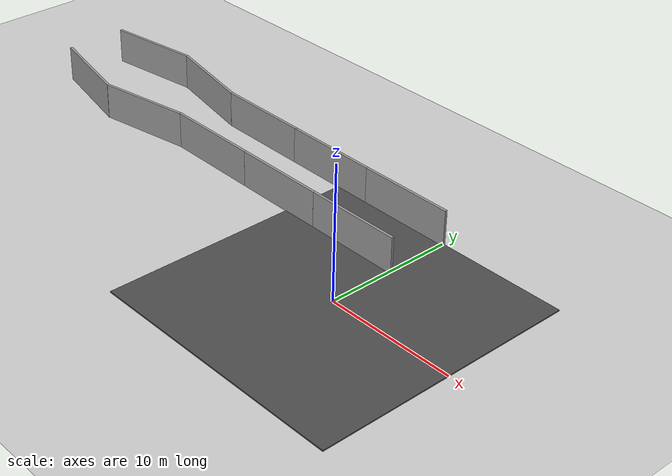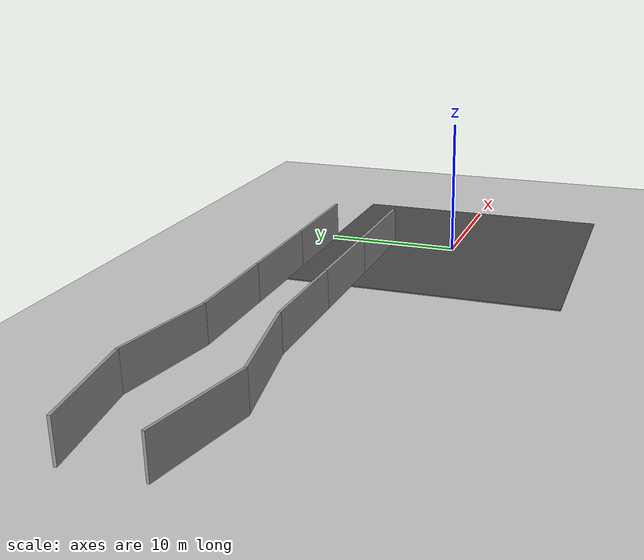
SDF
<sdf version="1.6">
 <world name="default">
  <light name="sun" type="directional">
   <pose>0 0 10 0 -0 0</pose>
   <diffuse>0.8 0.8 0.8 1</diffuse>
   <specular>0.1 0.1 0.1 1</specular>
   <attenuation>
    <range>1000</range>
    <constant>0.9</constant>
    <linear>0.01</linear>
    <quadratic>0.001</quadratic>
   </attenuation>
   <direction>-0.5 0.5 -1</direction>
  </light>
  <model name="ground_plane">
   <static>1</static>
   <link name="link">
    <collision name="collision">
     <geometry><plane><normal>0 0 1</normal><size>100 100</size></plane></geometry>
     <surface><friction><ode><mu>100</mu><mu2>50</mu2></ode></friction></surface>
    </collision>
    <visual name="visual">
     <cast_shadows>0</cast_shadows>
     <geometry><plane><normal>0 0 1</normal><size>100 100</size></plane></geometry>
     <material>
      <script><uri>file://media/materials/scripts/gazebo.material</uri><name>Gazebo/Grey</name></script>
     </material>
    </visual>
   </link>
  </model>
  <model name="asphalt_plane">
   <static>1</static>
   <link name="link">
    <collision name="collision"><geometry><box><size>20 20 0.1</size></box></geometry></collision>
    <visual name="visual">
     <cast_shadows>0</cast_shadows>
     <geometry><box><size>20 20 0.1</size></box></geometry>
     <material>
      <script>
       <uri>model://asphalt_plane/materials/scripts</uri>
       <uri>model://asphalt_plane/materials/textures</uri>
       <name>vrc/asphalt</name>
      </script>
     </material>
    </visual>
   </link>
  </model>
  <physics name="default_physics" default="0" type="ode">
   <ode>
    <solver>
     <type>quick</type>
     <iters>10</iters>
     <sor>1.3</sor>
     <use_dynamic_moi_rescaling>0</use_dynamic_moi_rescaling>
    </solver>
    <constraints>
     <cfm>0</cfm>
     <erp>0.2</erp>
     <contact_max_correcting_vel>100</contact_max_correcting_vel>
     <contact_surface_layer>0.001</contact_surface_layer>
    </constraints>
   </ode>
   <max_step_size>0.002</max_step_size>
   <real_time_factor>1</real_time_factor>
   <real_time_update_rate>500</real_time_update_rate>
  </physics>
  <model name="grey_wall">
   <static>1</static>
   <link name="link">
    <pose>0 0 1.4 0 -0 0</pose>
    <collision name="collision"><geometry><box><size>7.5 0.2 2.8</size></box></geometry></collision>
    <visual name="visual">
     <cast_shadows>0</cast_shadows>
     <geometry><box><size>7.5 0.2 2.8</size></box></geometry>
     <material>
      <script>
       <uri>model://grey_wall/materials/scripts</uri>
       <uri>model://grey_wall/materials/textures</uri>
       <name>vrc/grey_wall</name>
      </script>
     </material>
    </visual>
   </link>
   <pose>-10.9688 9.86946 0 0 -0 3.13693</pose>
  </model>
  <model name="grey_wall2">
   <static>1</static>
   <link name="link">
    <pose>0 0 1.4 0 -0 0</pose>
    <collision name="collision"><geometry><box><size>7.5 0.2 2.8</size></box></geometry></collision>
    <visual name="visual">
     <cast_shadows>0</cast_shadows>
     <geometry><box><size>7.5 0.2 2.8</size></box></geometry>
     <material>
      <script>
       <uri>model://grey_wall/materials/scripts</uri>
       <uri>model://grey_wall/materials/textures</uri>
       <name>vrc/grey_wall</name>
      </script>
     </material>
    </visual>
   </link>
   <pose>-3.5 9.85319 0 0 -0 0</pose>
  </model>
  <gravity>0 0 -9.8066</gravity>
  <magnetic_field>6e-06 2.3e-05 -4.2e-05</magnetic_field>
  <atmosphere type="adiabatic"/>
  <scene><ambient>0.4 0.4 0.4 1</ambient><background>0.7 0.7 0.7 1</background><shadows>1</shadows></scene>
  <spherical_coordinates>
   <surface_model>EARTH_WGS84</surface_model>
   <latitude_deg>0</latitude_deg>
   <longitude_deg>0</longitude_deg>
   <elevation>0</elevation>
   <heading_deg>0</heading_deg>
  </spherical_coordinates>
  <model name="grey_wall2_clone">
   <static>1</static>
   <link name="link">
    <pose>0 0 1.4 0 -0 0</pose>
    <collision name="collision"><geometry><box><size>7.5 0.2 2.8</size></box></geometry></collision>
    <visual name="visual">
     <cast_shadows>0</cast_shadows>
     <geometry><box><size>7.5 0.2 2.8</size></box></geometry>
     <material>
      <script>
       <uri>model://grey_wall/materials/scripts</uri>
       <uri>model://grey_wall/materials/textures</uri>
       <name>vrc/grey_wall</name>
      </script>
     </material>
    </visual>
   </link>
   <pose>-3.50447 4.93379 0 0 -0 0</pose>
  </model>
  <model name="grey_wall_clone">
   <static>1</static>
   <link name="link">
    <pose>0 0 1.4 0 -0 0</pose>
    <collision name="collision"><geometry><box><size>7.5 0.2 2.8</size></box></geometry></collision>
    <visual name="visual">
     <cast_shadows>0</cast_shadows>
     <geometry><box><size>7.5 0.2 2.8</size></box></geometry>
     <material>
      <script>
       <uri>model://grey_wall/materials/scripts</uri>
       <uri>model://grey_wall/materials/textures</uri>
       <name>vrc/grey_wall</name>
      </script>
     </material>
    </visual>
   </link>
   <pose>-10.9843 4.94905 0 0 -0 3.13693</pose>
  </model>
  <model name="grey_wall_clone_0">
   <static>1</static>
   <link name="link">
    <pose>0 0 1.4 0 -0 0</pose>
    <collision name="collision"><geometry><box><size>7.5 0.2 2.8</size></box></geometry></collision>
    <visual name="visual">
     <cast_shadows>0</cast_shadows>
     <geometry><box><size>7.5 0.2 2.8</size></box></geometry>
     <material>
      <script>
       <uri>model://grey_wall/materials/scripts</uri>
       <uri>model://grey_wall/materials/textures</uri>
       <name>vrc/grey_wall</name>
      </script>
     </material>
    </visual>
   </link>
   <pose>-18.2852 9.90542 0 0 -0 3.13693</pose>
  </model>
  <model name="grey_wall_clone_1">
   <static>1</static>
   <link name="link">
    <pose>0 0 1.4 0 -0 0</pose>
    <collision name="collision"><geometry><box><size>7.5 0.2 2.8</size></box></geometry></collision>
    <visual name="visual">
     <cast_shadows>0</cast_shadows>
     <geometry><box><size>7.5 0.2 2.8</size></box></geometry>
     <material>
      <script>
       <uri>model://grey_wall/materials/scripts</uri>
       <uri>model://grey_wall/materials/textures</uri>
       <name>vrc/grey_wall</name>
      </script>
     </material>
    </visual>
   </link>
   <pose>-18.2378 4.98165 0 0 -0 3.13693</pose>
  </model>
  <model name="grey_wall_clone_2">
   <static>1</static>
   <link name="link">
    <pose>0 0 1.4 0 -0 0</pose>
    <collision name="collision"><geometry><box><size>7.5 0.2 2.8</size></box></geometry></collision>
    <visual name="visual">
     <cast_shadows>0</cast_shadows>
     <geometry><box><size>7.5 0.2 2.8</size></box></geometry>
     <material>
      <script>
       <uri>model://grey_wall/materials/scripts</uri>
       <uri>model://grey_wall/materials/textures</uri>
       <name>vrc/grey_wall</name>
      </script>
     </material>
    </visual>
   </link>
   <pose>-25.5813 4.33021 0 0 0 -2.96062</pose>
  </model>
  <model name="grey_wall_clone_3">
   <static>1</static>
   <link name="link">
    <pose>0 0 1.4 0 -0 0</pose>
    <collision name="collision"><geometry><box><size>7.5 0.2 2.8</size></box></geometry></collision>
    <visual name="visual">
     <cast_shadows>0</cast_shadows>
     <geometry><box><size>7.5 0.2 2.8</size></box></geometry>
     <material>
      <script>
       <uri>model://grey_wall/materials/scripts</uri>
       <uri>model://grey_wall/materials/textures</uri>
       <name>vrc/grey_wall</name>
      </script>
     </material>
    </visual>
   </link>
   <pose>-25.661 10.6159 0 0 -0 2.95399</pose>
  </model>
  <model name="grey_wall_clone_4">
   <static>1</static>
   <link name="link">
    <pose>0 0 1.4 0 -0 0</pose>
    <collision name="collision"><geometry><box><size>7.5 0.2 2.8</size></box></geometry></collision>
    <visual name="visual">
     <cast_shadows>0</cast_shadows>
     <geometry><box><size>7.5 0.2 2.8</size></box></geometry>
     <material>
      <script>
       <uri>model://grey_wall/materials/scripts</uri>
       <uri>model://grey_wall/materials/textures</uri>
       <name>vrc/grey_wall</name>
      </script>
     </material>
    </visual>
   </link>
   <pose>-32.8752 4.43351 0 0 -0 2.9286</pose>
  </model>
  <model name="grey_wall_clone_5">
   <static>1</static>
   <link name="link">
    <pose>0 0 1.4 0 -0 0</pose>
    <collision name="collision"><geometry><box><size>7.5 0.2 2.8</size></box></geometry></collision>
    <visual name="visual">
     <cast_shadows>0</cast_shadows>
     <geometry><box><size>7.5 0.2 2.8</size></box></geometry>
     <material>
      <script>
       <uri>model://grey_wall/materials/scripts</uri>
       <uri>model://grey_wall/materials/textures</uri>
       <name>vrc/grey_wall</name>
      </script>
     </material>
    </visual>
   </link>
   <pose>-32.9418 10.7448 0 0 0 -2.99338</pose>
  </model>
 </world>
</sdf>
